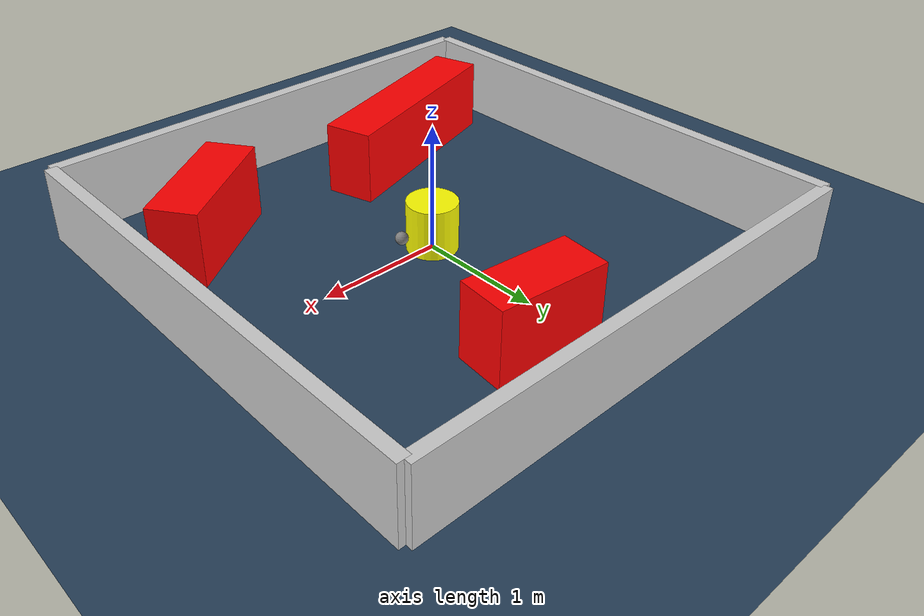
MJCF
<?xml version="1.0" ?>
<mujoco model="generated_environment">
  <option timestep="0.01" integrator="RK4" cone="elliptic"/>
  <default>
    <geom density="1"/>
  </default>
  <asset>
    <texture builtin="gradient" height="3072" rgb1="0.3 0.5 0.7" rgb2="0 0 0" type="skybox" width="512"/>
    <texture builtin="checker" height="300" mark="edge" markrgb="0.8 0.8 0.8" name="groundplane" rgb1="0.2 0.3 0.4" rgb2="0.1 0.2 0.3" type="2d" width="300"/>
    <material name="groundplane" reflectance="0.2" texrepeat="5 5" texture="groundplane" texuniform="true"/>
    <material name="robot" rgba="0.0 1.0 0.0 1"/>
  </asset>
  <worldbody>
    <light dir="0 0 -1" directional="true" pos="0 0 1.5"/>
    <geom condim="4" friction="1.0 0.005 0.001" material="groundplane" name="floor" size="0 0 0.05" type="plane"/>
    <body name="walls">
      <geom name="wall_1" condim="4" pos="-2.0 0.0 0.3" rgba="0.800000011920929 0.800000011920929 0.800000011920929 1.0" size="0.05 2.0 0.3" type="box"/>
      <geom name="wall_2" condim="4" pos="2.0 0.0 0.3" rgba="0.800000011920929 0.800000011920929 0.800000011920929 1.0" size="0.05 2.0 0.3" type="box"/>
      <geom name="wall_3" condim="4" pos="0.0 -2.0 0.3" rgba="0.800000011920929 0.800000011920929 0.800000011920929 1.0" size="2.0 0.05 0.3" type="box"/>
      <geom name="wall_4" condim="4" pos="0.0 2.0 0.3" rgba="0.800000011920929 0.800000011920929 0.800000011920929 1.0" size="2.0 0.05 0.3" type="box"/>
    </body>
    <body name="robot">
      <joint name="joint_x" type="slide" pos="0 0 0" axis="1 0 0"/>
      <joint name="joint_y" type="slide" pos="0 0 0" axis="0 1 0"/>
      <geom name="robot" type="sphere" pos="0.3 0.0 0.2" size="0.05" mass="5." friction="1.0 0.005 0.0001" condim="4" rgba="0.5 0.5 0.5 1.0"/>
      <site name="sensor_ball"/>
    </body>
    <body name="obstacle_movable_1">
      <geom name="obstacle_movable_1" condim="4" pos="0.0 0.0 0.2" euler="0 0 0.0" friction="1.0 0.005 0.001" rgba="1.0 1.0 0.0 1.0" size="0.2 0.2 0.0" type="cylinder" mass="0.1"/>
      <joint type="free"/>
    </body>
    <body name="obstacle_2_static">
      <geom name="obstacle_2_static" condim="4" pos="-0.8449106472780941 -1.2762981343738402 0.3" euler="0 0 197.00722989217152" friction="1.0 0.005 0.001" rgba="1 0 0 1" size="0.8652662979916166 0.2 0.3" type="box"/>
    </body>
    <body name="obstacle_3_static">
      <geom name="obstacle_3_static" condim="4" pos="0.34938848434486913 1.3355733938046457 0.3" euler="0 0 174.5101173865265" friction="1.0 0.005 0.001" rgba="1 0 0 1" size="0.4366322880316867 0.2 0.3" type="box"/>
    </body>
    <body name="obstacle_4_static">
      <geom name="obstacle_4_static" condim="4" pos="1.2340040900481362 -1.1400838680475132 0.3" euler="0 0 35.08484652480372" friction="1.0 0.005 0.001" rgba="1 0 0 1" size="0.5281123502322812 0.2 0.3" type="box"/>
    </body>
  </worldbody>
  <actuator>
    <motor name="actuator_x" joint="joint_x" gear="1" ctrlrange="-1 1"/>
    <motor name="actuator_y" joint="joint_y" gear="1" ctrlrange="-1 1"/>
  </actuator>
</mujoco>
